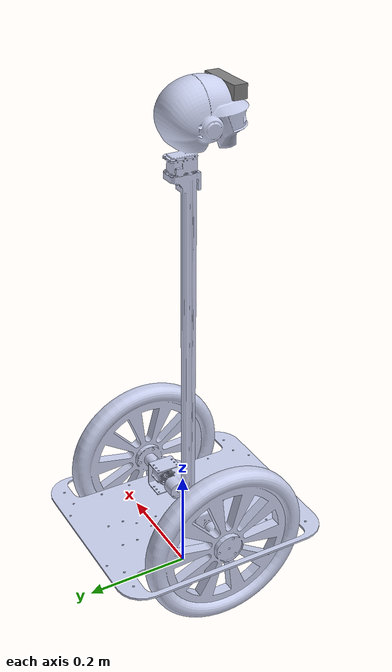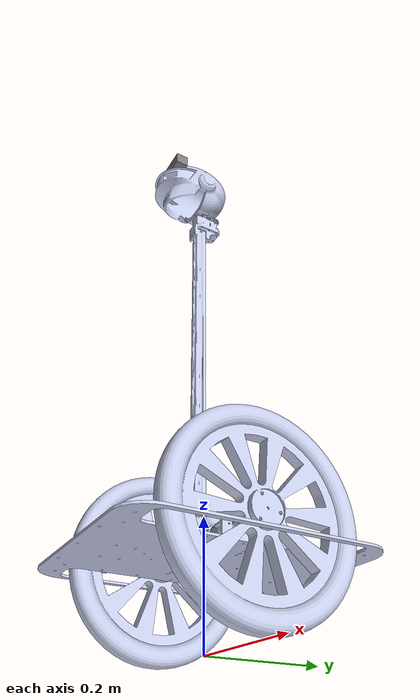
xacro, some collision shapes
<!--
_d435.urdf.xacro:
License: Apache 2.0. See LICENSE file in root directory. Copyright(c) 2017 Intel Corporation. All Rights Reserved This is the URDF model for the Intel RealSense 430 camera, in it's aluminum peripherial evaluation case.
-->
<robot xmlns:xacro="http://ros.org/wiki/xacro" name="humanoi_robot">
  <xacro:include filename="$(find humanoid_robot_description)/urdf/_d435.urdf.xacro"/>

  <link name="base_link">
    <inertial>
      <origin xyz="0.000106771898555624 -0.00950333311264856 0.421923246207401" rpy="0 0 0"/>
      <mass value="1.09045449262295"/>
      <inertia ixx="0.1329526918414" ixy="4.52001568995455E-06" ixz="-4.72627768389478E-05" iyy="0.132960613916937" iyz="0.00458399908461352" izz="0.00114729742430935"/>
    </inertial>
    <visual>
      <origin xyz="0 0 0" rpy="0 0 0"/>
      <geometry>
        <mesh filename="package://humanoid_robot_description/meshes/base_link.STL"/>
      </geometry>
      <material name="">
        <color rgba="0.792156862745098 0.819607843137255 0.933333333333333 1"/>
      </material>
    </visual>
    <collision>
      <origin xyz="0 0 0" rpy="0 0 0"/>
      <geometry>
        <mesh filename="package://humanoid_robot_description/meshes/base_link.STL"/>
      </geometry>
    </collision>
  </link>

  <link name="left_link">
    <inertial>
      <origin xyz="1.35240152410177E-11 -4.29594135015199E-07 -0.0495805946191804" rpy="0 0 0"/>
      <mass value="1.59252474408208"/>
      <inertia ixx="1.79972735915405E-05" ixy="4.57739569311539E-16" ixz="-4.93968193674911E-13" iyy="1.79972590513083E-05" iyz="1.56909393548931E-08" izz="1.45402322064866E-11"/>
    </inertial>
    <visual>
      <origin xyz="0 0 0" rpy="0 0 0"/>
      <geometry>
        <mesh filename="package://humanoid_robot_description/meshes/left_link.STL"/>
      </geometry>
      <material name="">
        <color rgba="0.792156862745098 0.819607843137255 0.933333333333333 1"/>
      </material>
    </visual>
    <collision>
      <origin xyz="0 0 0" rpy="0 0 0"/>
      <geometry>
        <mesh filename="package://humanoid_robot_description/meshes/left_link.STL"/>
      </geometry>
    </collision>
  </link>

  <joint name="left_joint" type="continuous">
    <origin xyz="0.105499999999999 0 0.159" rpy="1.5707963267949 0.391796412189497 -1.5707963267949"/>
    <parent link="base_link"/>
    <child link="left_link"/>
    <axis xyz="0 0 -1"/>
  </joint>

  <link name="right_link">
    <inertial>
      <origin xyz="1.35241262633201E-11 -4.29594134876421E-07 -0.0495805946191804" rpy="0 0 0"/>
      <mass value="1.59252474408208"/>
      <inertia ixx="1.79972735915405E-05" ixy="4.57743804476276E-16" ixz="-4.9396815848458E-13" iyy="1.79972590513083E-05" iyz="1.5690939354991E-08" izz="1.45402322066618E-11"/>
    </inertial>
    <visual>
      <origin xyz="0 0 0" rpy="0 0 0"/>
      <geometry>
        <mesh filename="package://humanoid_robot_description/meshes/right_link.STL"/>
      </geometry>
      <material name="">
        <color rgba="0.792156862745098 0.819607843137255 0.933333333333333 1"/>
      </material>
    </visual>
    <collision>
      <origin xyz="0 0 0" rpy="0 0 0"/>
      <geometry>
        <mesh filename="package://humanoid_robot_description/meshes/right_link.STL"/>
      </geometry>
    </collision>
  </link>

  <joint name="right_joint" type="continuous">
    <origin xyz="-0.10550000000006 0 0.159000000000006" rpy="1.57079632679489 -0.391796412189497 1.5707963267949"/>
    <parent link="base_link"/>
    <child link="right_link"/>
    <axis xyz="0 0 1"/>
  </joint>

  <sensor_d435 parent="base_link">
    <origin xyz="4.75506188300778E-05 -0.0781614423708992 0.938311218159223" rpy="0 0 -1.57079777883574"/>
  </sensor_d435>

</robot>

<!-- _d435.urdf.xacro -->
<robot name="sensor_d435" xmlns:xacro="http://ros.org/wiki/xacro">
  <xacro:macro name="sensor_d435" params="parent *origin">
    <xacro:property name="M_PI" value="3.1415926535897931"/>

    <!-- The following values are approximate, and the camera node publishing TF values with actual calibrated camera extrinsic values -->
    <xacro:property name="d435_cam_depth_to_left_ir_offset" value="0.0"/>
    <xacro:property name="d435_cam_depth_to_right_ir_offset" value="-0.050"/>
    <xacro:property name="d435_cam_depth_to_color_offset" value="0.015"/>

    <!-- The following values model the aluminum peripherial case for the D435 camera, with the camera joint represented by the actual peripherial camera tripod mount -->
    <xacro:property name="d435_cam_width" value="0.090"/>
    <xacro:property name="d435_cam_height" value="0.025"/>
    <xacro:property name="d435_cam_depth" value="0.02505"/>
    <xacro:property name="d435_cam_mount_from_center_offset" value="0.0149"/>

    <!-- The following offset is relative the the physical D435 camera peripherial camera tripod mount -->
    <xacro:property name="d435_cam_depth_px" value="${d435_cam_mount_from_center_offset}"/>
    <xacro:property name="d435_cam_depth_py" value="0.0175"/>
    <xacro:property name="d435_cam_depth_pz" value="${d435_cam_height/2}"/>

    <material name="aluminum">
      <color rgba="0.5 0.5 0.5 1"/>
    </material>

    <!-- camera body, with origin at bottom screw mount -->
    <joint name="camera_joint" type="fixed">
      <xacro:insert_block name="origin"/>
      <parent link="${parent}"/>
      <child link="camera_bottom_screw_frame"/>
    </joint>
    <link name="camera_bottom_screw_frame"/>

    <joint name="camera_link_joint" type="fixed">
      <origin xyz="0 ${d435_cam_depth_py} ${d435_cam_depth_pz}" rpy="0 0 0"/>
      <parent link="camera_bottom_screw_frame"/>
      <child link="camera_link"/>
    </joint>

    <link name="camera_link">
      <visual>
        <origin xyz="${d435_cam_mount_from_center_offset} ${-d435_cam_depth_py} 0" rpy="${M_PI/2} 0 ${M_PI/2}"/>
        <geometry>
          <mesh filename="package://realsense2_camera/meshes/d435.dae"/>

        </geometry>
        <material name="aluminum"/>
      </visual>
      <collision>
        <origin xyz="0 ${-d435_cam_depth_py} 0" rpy="0 0 0"/>
        <geometry>
          <box size="${d435_cam_depth} ${d435_cam_width} ${d435_cam_height}"/>
        </geometry>
      </collision>
      <inertial>
        <!-- The following are not reliable values, and should not be used for modeling -->
        <mass value="0.564"/>
        <origin xyz="0 0 0"/>
        <inertia ixx="0.003881243" ixy="0.0" ixz="0.0" iyy="0.000498940" iyz="0.0" izz="0.003879257"/>
      </inertial>
    </link>

    <!-- camera depth joints and links -->
    <joint name="camera_depth_joint" type="fixed">
      <origin xyz="0 0 0" rpy="0 0 0"/>
      <parent link="camera_link"/>
      <child link="camera_depth_frame"/>
    </joint>
    <link name="camera_depth_frame"/>

    <joint name="camera_depth_optical_joint" type="fixed">
      <origin xyz="0 0 0" rpy="${-M_PI/2} 0 ${-M_PI/2}"/>
      <parent link="camera_depth_frame"/>
      <child link="camera_depth_optical_frame"/>
    </joint>
    <link name="camera_depth_optical_frame"/>

    <!-- camera left IR joints and links -->
    <joint name="camera_left_ir_joint" type="fixed">
      <origin xyz="0 ${d435_cam_depth_to_left_ir_offset} 0" rpy="0 0 0"/>
      <parent link="camera_depth_frame"/>
      <child link="camera_left_ir_frame"/>
    </joint>
    <link name="camera_left_ir_frame"/>

    <joint name="camera_left_ir_optical_joint" type="fixed">
      <origin xyz="0 0 0" rpy="${-M_PI/2} 0 ${-M_PI/2}"/>
      <parent link="camera_left_ir_frame"/>
      <child link="camera_left_ir_optical_frame"/>
    </joint>
    <link name="camera_left_ir_optical_frame"/>

    <!-- camera right IR joints and links -->
    <joint name="camera_right_ir_joint" type="fixed">
      <origin xyz="0 ${d435_cam_depth_to_right_ir_offset} 0" rpy="0 0 0"/>
      <parent link="camera_depth_frame"/>
      <child link="camera_right_ir_frame"/>
    </joint>
    <link name="camera_right_ir_frame"/>

    <joint name="camera_right_ir_optical_joint" type="fixed">
      <origin xyz="0 0 0" rpy="${-M_PI/2} 0 ${-M_PI/2}"/>
      <parent link="camera_right_ir_frame"/>
      <child link="camera_right_ir_optical_frame"/>
    </joint>
    <link name="camera_right_ir_optical_frame"/>

    <!-- camera color joints and links -->
    <joint name="camera_color_joint" type="fixed">
      <origin xyz="0 ${d435_cam_depth_to_color_offset} 0" rpy="0 0 0"/>
      <parent link="camera_depth_frame"/>
      <child link="camera_color_frame"/>
    </joint>
    <link name="camera_color_frame"/>

    <joint name="camera_color_optical_joint" type="fixed">
      <origin xyz="0 0 0" rpy="${-M_PI/2} 0 ${-M_PI/2}"/>
      <parent link="camera_color_frame"/>
      <child link="camera_color_optical_frame"/>
    </joint>
    <link name="camera_color_optical_frame"/>
  </xacro:macro>
</robot>
